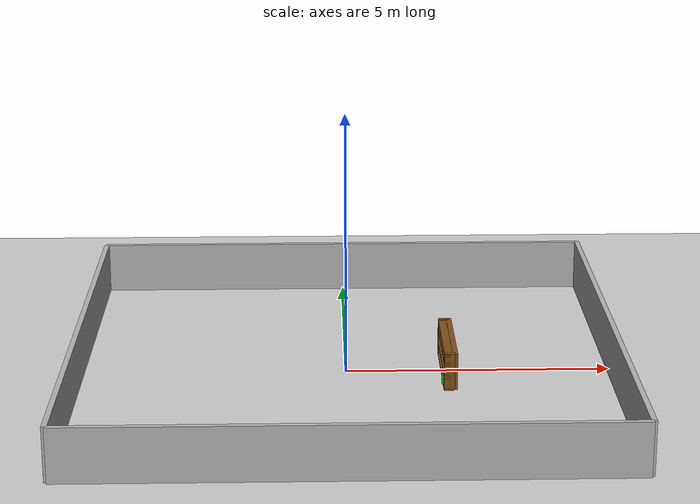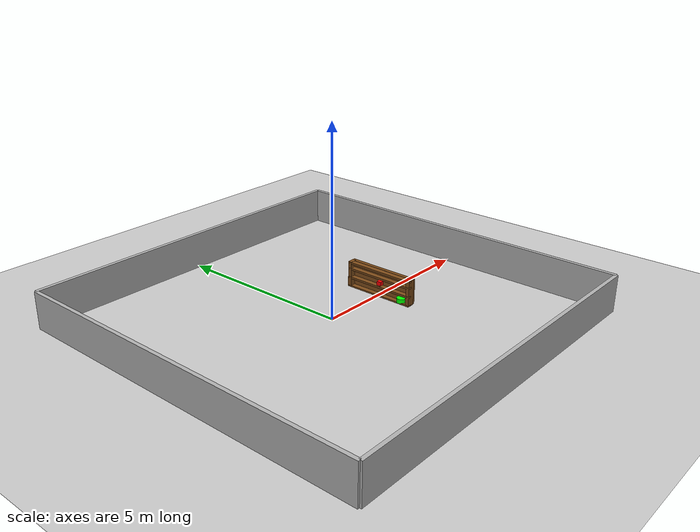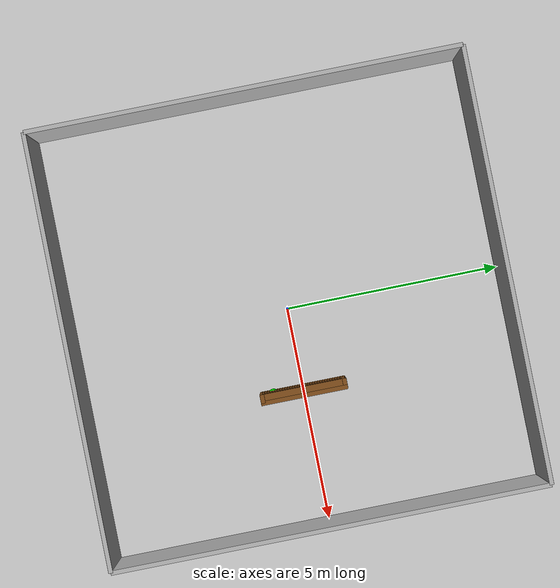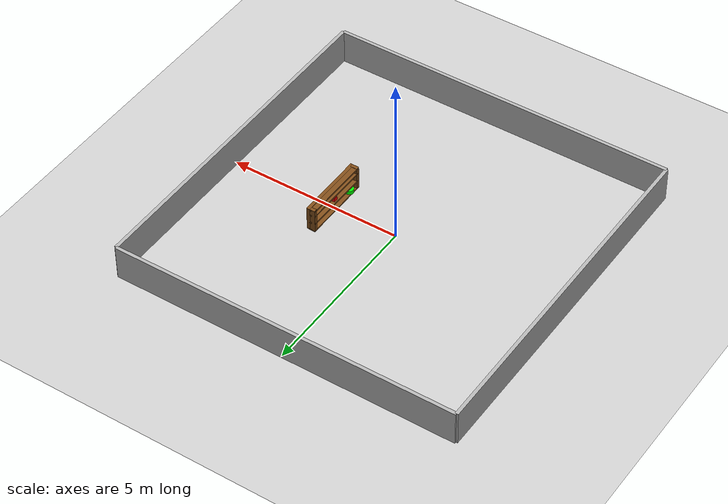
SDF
<?xml version="1.0"?>
<sdf version="1.6">
  <world name="warehouse">

    <plugin filename="gz-sim-physics-system"
            name="gz::sim::systems::Physics"/>
    <plugin filename="gz-sim-scene-broadcaster-system"
            name="gz::sim::systems::SceneBroadcaster"/>
    <plugin filename="gz-sim-user-commands-system"
            name="gz::sim::systems::UserCommands"/>
    <plugin filename="gz-sim-sensors-system"
            name="gz::sim::systems::Sensors">
      <render_engine>ogre2</render_engine>
    </plugin>

    <!--lighting-->
    <light type="directional" name="sun">
      <cast_shadows>false</cast_shadows>
      <pose>0 0 10 0 0 0</pose>
      <diffuse>1.0 1.0 1.0 1</diffuse>
      <specular>0.5 0.5 0.5 1</specular>
      <direction>0 0 -1</direction>
      <attenuation>
        <range>1000</range>
        <constant>0.9</constant>
        <linear>0.01</linear>
        <quadratic>0.001</quadratic>
      </attenuation>
    </light>

    <!--ground_plane-->
    <model name="ground_plane">
      <static>true</static>
      <link name="link">
        <collision name="collision">
          <geometry>
            <plane>
              <normal>0 0 1</normal>
            </plane>
          </geometry>
        </collision>
        <visual name="visual">
          <geometry>
            <plane>
              <normal>0 0 1</normal>
              <size>20 20</size>
            </plane>
          </geometry>
          <material>
            <ambient>0.8 0.8 0.8 1</ambient>
            <diffuse>0.8 0.8 0.8 1</diffuse>
            <specular>0.8 0.8 0.8 1</specular>
          </material>
        </visual>
      </link>
    </model>

    <!--North_Wall-->
    <model name="north_wall">
      <static>true</static>
      <pose>0 5 0.5 0 0 0</pose>
      <link name="link">
        <collision name="collision">
          <geometry>
            <box>
              <size>10 0.1 1</size>
            </box>
          </geometry>
        </collision>
        <visual name="visual">
          <geometry>
            <box>
              <size>10 0.1 1</size>
            </box>
          </geometry>
          <material>
            <ambient>0.7 0.7 0.7 1</ambient>
            <diffuse>0.7 0.7 0.7 1</diffuse>
          </material>
        </visual>
      </link>
    </model>

    <!--South_wall-->
    <model name="south_wall">
      <static>true</static>
      <pose>0 -5 0.5 0 0 0</pose>
      <link name="link">
        <collision name="collision">
          <geometry>
            <box>
              <size>10 0.1 1</size>
            </box>
          </geometry>
        </collision>
        <visual name="visual">
          <geometry>
            <box>
              <size>10 0.1 1</size>
            </box>
          </geometry>
          <material>
            <ambient>0.7 0.7 0.7 1</ambient>
            <diffuse>0.7 0.7 0.7 1</diffuse>
          </material>
        </visual>
      </link>
    </model>

    <!--East_wall-->
    <model name="east_wall">
      <static>true</static>
      <pose>5 0 0.5 0 0 0</pose>
      <link name="link">
        <collision name="collision">
          <geometry>
            <box>
              <size>0.1 10 1</size>
            </box>
          </geometry>
        </collision>
        <visual name="visual">
          <geometry>
            <box>
              <size>0.1 10 1</size>
            </box>
          </geometry>
          <material>
            <ambient>0.7 0.7 0.7 1</ambient>
            <diffuse>0.7 0.7 0.7 1</diffuse>
          </material>
        </visual>
      </link>
    </model>

    <!--West_wall-->
    <model name="west_wall">
      <static>true</static>
      <pose>-5 0 0.5 0 0 0</pose>
      <link name="link">
        <collision name="collision">
          <geometry>
            <box>
              <size>0.1 10 1</size>
            </box>
          </geometry>
        </collision>
        <visual name="visual">
          <geometry>
            <box>
              <size>0.1 10 1</size>
            </box>
          </geometry>
          <material>
            <ambient>0.7 0.7 0.7 1</ambient>
            <diffuse>0.7 0.7 0.7 1</diffuse>
          </material>
        </visual>
      </link>
    </model>

    <!--Shelves-->
    <model name="shelf_back">
      <static>true</static>
      <pose>2 0 0.35 0 0 0</pose>
      <link name="link">
        <collision name="collision">
          <geometry>
            <box>
              <size>0.1 2 0.7</size>
            </box>
          </geometry>
        </collision>
        <visual name="visual">
          <geometry>
            <box>
              <size>0.1 2 0.7</size>
            </box>
          </geometry>
          <material>
            <ambient>0.5 0.3 0.1 1</ambient>
            <diffuse>0.5 0.3 0.1 1</diffuse>
          </material>
        </visual>
      </link>
    </model>

    <model name="shelf_left_side">
      <static>true</static>
      <pose>1.9 0.95 0.35 0 0 1.57</pose>
      <link name="link">
        <collision name="collision">
          <geometry>
            <box>
              <size>0.1 0.2 0.7</size>
            </box>
          </geometry>
        </collision>
        <visual name="visual">
          <geometry>
            <box>
              <size>0.1 0.2 0.7</size>
            </box>
          </geometry>
          <material>
            <ambient>0.5 0.3 0.1 1</ambient>
            <diffuse>0.5 0.3 0.1 1</diffuse>
          </material>
        </visual>
      </link>
    </model>

    <model name="shelf_right_side">
      <static>true</static>
      <pose>1.9 -0.95 0.35 0 0 1.57</pose>
      <link name="link">
        <collision name="collision">
          <geometry>
            <box>
              <size>0.1 0.2 0.7</size>
            </box>
          </geometry>
        </collision>
        <visual name="visual">
          <geometry>
            <box>
              <size>0.1 0.2 0.7</size>
            </box>
          </geometry>
          <material>
            <ambient>0.5 0.3 0.1 1</ambient>
            <diffuse>0.5 0.3 0.1 1</diffuse>
          </material>
        </visual>
      </link>
    </model>

    <model name="shelf_1">
      <static>true</static>
      <pose>1.9 0 0.25 0 1.57 0</pose>
      <link name="link">
        <collision name="collision">
          <geometry>
            <box>
              <size>0.05 2 0.2</size>
            </box>
          </geometry>
        </collision>
        <visual name="visual">
          <geometry>
            <box>
              <size>0.05 2 0.2</size>
            </box>
          </geometry>
          <material>
            <ambient>0.5 0.3 0.1 1</ambient>
            <diffuse>0.5 0.3 0.1 1</diffuse>
          </material>
        </visual>
      </link>
    </model>

    <model name="shelf_2">
      <static>true</static>
      <pose>1.9 0 0.5 0 1.57 0</pose>
      <link name="link">
        <collision name="collision">
          <geometry>
            <box>
              <size>0.05 2 0.2</size>
            </box>
          </geometry>
        </collision>
        <visual name="visual">
          <geometry>
            <box>
              <size>0.05 2 0.2</size>
            </box>
          </geometry>
          <material>
            <ambient>0.5 0.3 0.1 1</ambient>
            <diffuse>0.5 0.3 0.1 1</diffuse>
          </material>
        </visual>
      </link>
    </model>

    <model name="shelf_lower">
      <static>true</static>
      <pose>1.9 0 0 0 1.57 0</pose>
      <link name="link">
        <collision name="collision">
          <geometry>
            <box>
              <size>0.05 2 0.2</size>
            </box>
          </geometry>
        </collision>
        <visual name="visual">
          <geometry>
            <box>
              <size>0.05 2 0.2</size>
            </box>
          </geometry>
          <material>
            <ambient>0.5 0.3 0.1 1</ambient>
            <diffuse>0.5 0.3 0.1 1</diffuse>
          </material>
        </visual>
      </link>
    </model>

    <model name="shelf_upper">
      <static>true</static>
      <pose>1.9 0 0.67 0 1.57 0</pose>
      <link name="link">
        <collision name="collision">
          <geometry>
            <box>
              <size>0.05 2 0.2</size>
            </box>
          </geometry>
        </collision>
        <visual name="visual">
          <geometry>
            <box>
              <size>0.05 2 0.2</size>
            </box>
          </geometry>
          <material>
            <ambient>0.5 0.3 0.1 1</ambient>
            <diffuse>0.5 0.3 0.1 1</diffuse>
          </material>
        </visual>
      </link>
    </model>

    <model name="red_box_1">
      <static>false</static>
      <pose>1.9 0 0.33 0 0 0</pose>
      <link name="link">
        <visual name="visual">
          <geometry>
            <box>
              <size>0.12 0.12 0.12</size>
            </box>
          </geometry>
          <material>
            <ambient>1 0 0 1</ambient>
            <diffuse>1 0 0 1</diffuse>
          </material>
        </visual>
        <collision name="collision">
          <geometry>
            <box>
              <size>0.12 0.12 0.12</size>
            </box>
          </geometry>
        </collision>
      </link>
    </model>

    <model name="green_cylinder_1">
      <static>false</static>
      <pose>1.9 -0.7 0.07 0 0 0</pose>
      <link name="link">
        <visual name="visual">
          <geometry>
            <cylinder>
              <radius>0.125</radius>
              <length>0.12</length>
            </cylinder>
          </geometry>
          <material>
            <ambient>0 1 0 1</ambient>
            <diffuse>0 1 0 1</diffuse>
          </material>
        </visual>
        <collision name="collision">
          <geometry>
            <cylinder>
              <radius>0.1</radius>
              <length>0.12</length>
            </cylinder>
          </geometry>
        </collision>
      </link>
    </model>

  </world>
</sdf>
